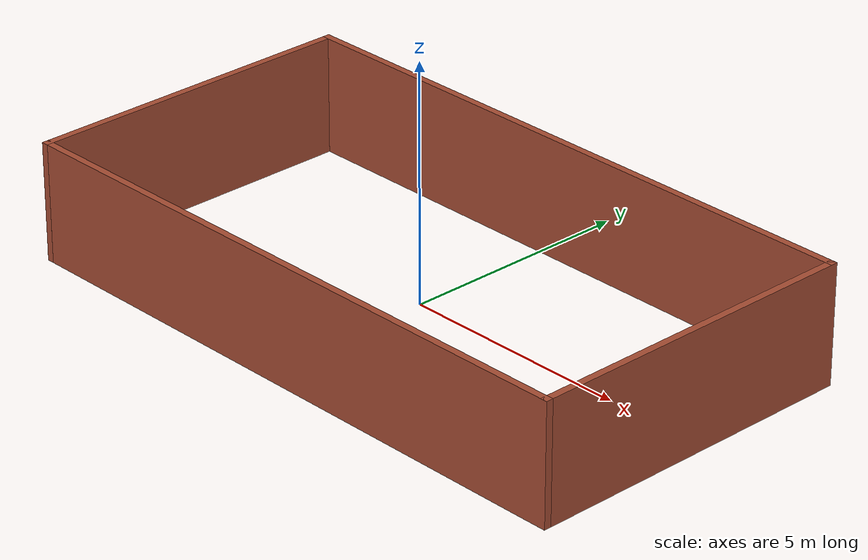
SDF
<?xml version='1.0'?>
<sdf version='1.7'>
  <model name='Untitled'>
    <pose>0.554712 -0.335472 0 0 -0 0</pose>
    <link name='Wall_4'>
      <collision name='Wall_4_Collision'>
        <geometry>
          <box>
            <size>13.5 0.15 2.5</size>
          </box>
        </geometry>
        <pose>0 0 1.25 0 -0 0</pose>
      </collision>
      <visual name='Wall_4_Visual'>
        <pose>0 0 1.25 0 -0 0</pose>
        <geometry>
          <box>
            <size>13.5 0.15 2.5</size>
          </box>
        </geometry>
        <material>
          <script>
            <uri>file://media/materials/scripts/gazebo.material</uri>
            <name>Gazebo/Bricks</name>
          </script>
          <ambient>1 1 1 1</ambient>
        </material>
        <meta>
          <layer>0</layer>
        </meta>
      </visual>
      <pose>0 3.55 0 0 -0 0</pose>
    </link>
    <link name='Wall_5'>
      <collision name='Wall_5_Collision'>
        <geometry>
          <box>
            <size>7.25 0.15 2.5</size>
          </box>
        </geometry>
        <pose>0 0 1.25 0 -0 0</pose>
      </collision>
      <visual name='Wall_5_Visual'>
        <pose>0 0 1.25 0 -0 0</pose>
        <geometry>
          <box>
            <size>7.25 0.15 2.5</size>
          </box>
        </geometry>
        <material>
          <script>
            <uri>file://media/materials/scripts/gazebo.material</uri>
            <name>Gazebo/Bricks</name>
          </script>
          <ambient>1 1 1 1</ambient>
        </material>
        <meta>
          <layer>0</layer>
        </meta>
      </visual>
      <pose>6.675 -0 0 0 -0 -1.5708</pose>
    </link>
    <link name='Wall_6'>
      <collision name='Wall_6_Collision'>
        <geometry>
          <box>
            <size>13.5 0.15 2.5</size>
          </box>
        </geometry>
        <pose>0 0 1.25 0 -0 0</pose>
      </collision>
      <visual name='Wall_6_Visual'>
        <pose>0 0 1.25 0 -0 0</pose>
        <geometry>
          <box>
            <size>13.5 0.15 2.5</size>
          </box>
        </geometry>
        <material>
          <script>
            <uri>file://media/materials/scripts/gazebo.material</uri>
            <name>Gazebo/Bricks</name>
          </script>
          <ambient>1 1 1 1</ambient>
        </material>
        <meta>
          <layer>0</layer>
        </meta>
      </visual>
      <pose>0 -3.55 0 0 -0 3.14159</pose>
    </link>
    <link name='Wall_7'>
      <collision name='Wall_7_Collision'>
        <geometry>
          <box>
            <size>7.25 0.15 2.5</size>
          </box>
        </geometry>
        <pose>0 0 1.25 0 -0 0</pose>
      </collision>
      <visual name='Wall_7_Visual'>
        <pose>0 0 1.25 0 -0 0</pose>
        <geometry>
          <box>
            <size>7.25 0.15 2.5</size>
          </box>
        </geometry>
        <material>
          <script>
            <uri>file://media/materials/scripts/gazebo.material</uri>
            <name>Gazebo/Bricks</name>
          </script>
          <ambient>1 1 1 1</ambient>
        </material>
        <meta>
          <layer>0</layer>
        </meta>
      </visual>
      <pose>-6.675 -0 0 0 -0 1.5708</pose>
    </link>
    <static>1</static>
  </model>
</sdf>
